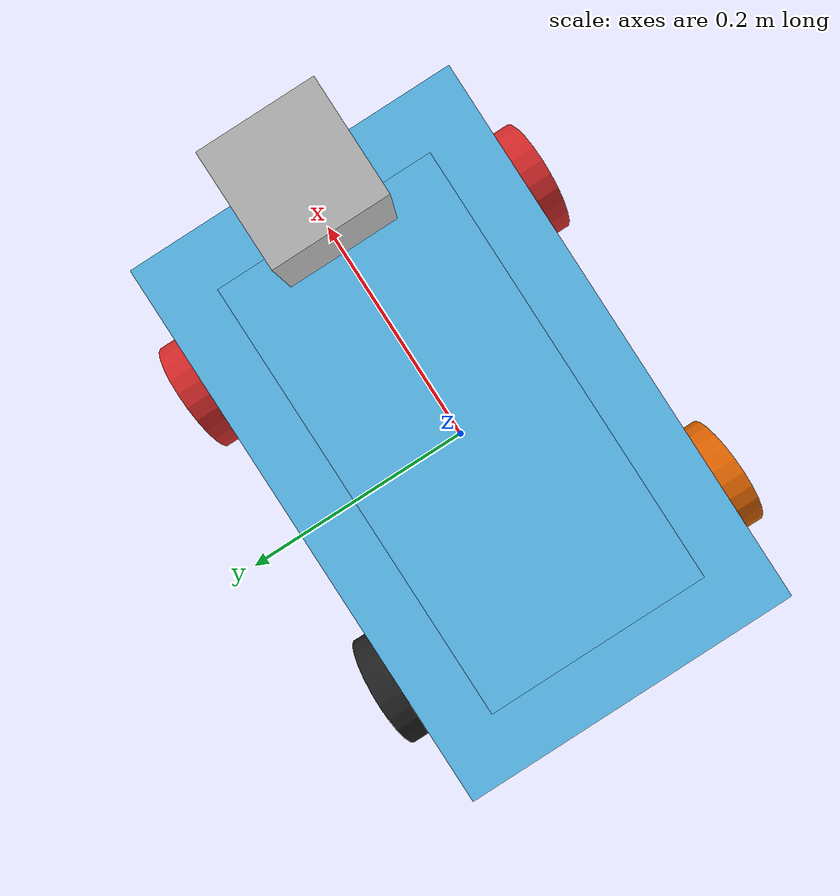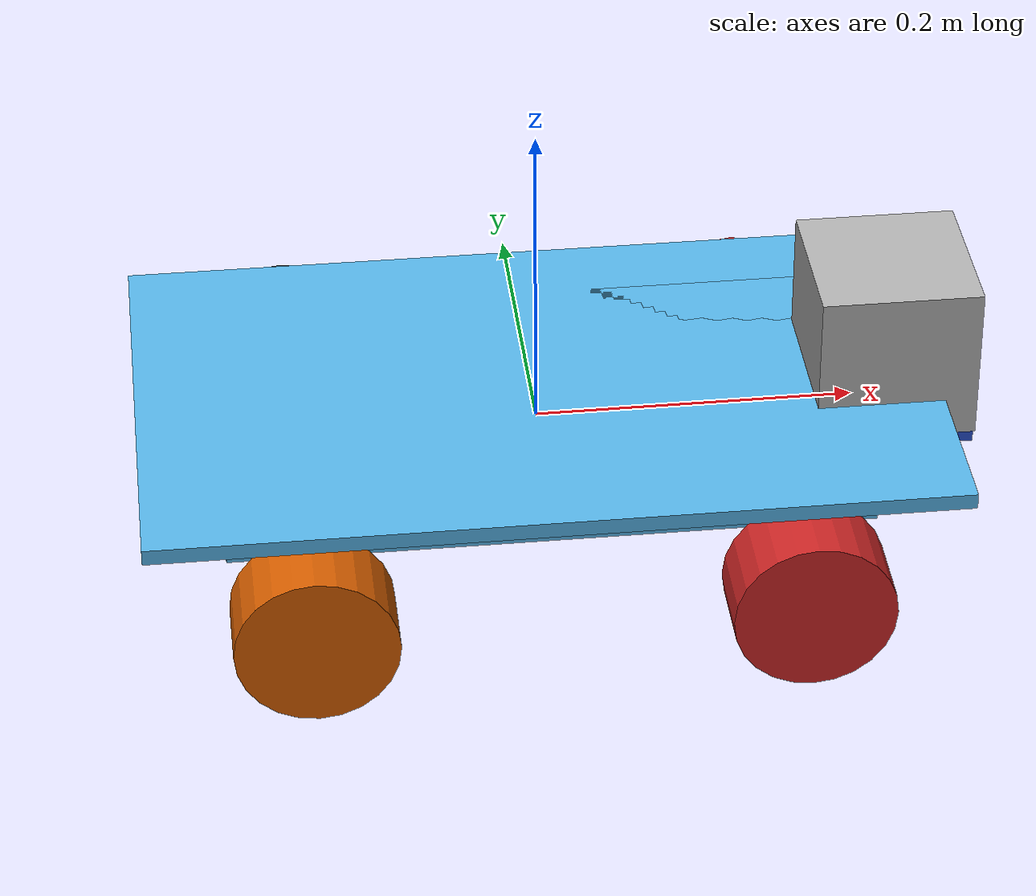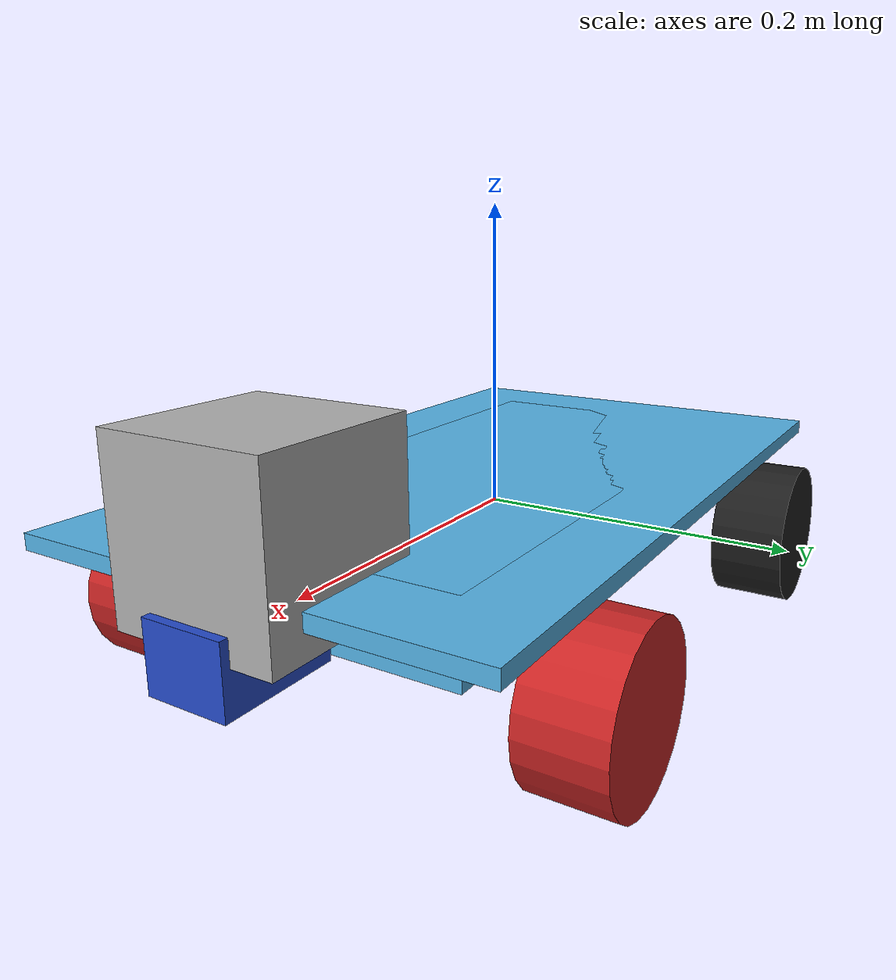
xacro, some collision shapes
<?xml version='1.0'?>

<robot name="my_bot" xmlns:xacro="http://www.ros.org/wiki/xacro">
<xacro:include filename="$(find custom_bot)/urdf/my_bot.gazebo" />
  <link name="robot_footprint"></link>

  <joint name="robot_footprint_joint" type="fixed">
    <origin xyz="0 0 0" rpy="0 0 0" />
    <parent link="robot_footprint"/>
    <child link="chassis" />
  </joint>

  <link name='chassis'>
    <pose>0 0 0.1 0 0 0</pose>

    <inertial>
      <mass value="15.0"/>
      <origin xyz="0.0 0 0" rpy=" 0 0 0"/>
      <inertia
          ixx="0.1" ixy="0" ixz="0"
          iyy="0.1" iyz="0"
          izz="0.1"
      />
    </inertial>

    <collision name='collision'>
      <origin xyz="0 0 0" rpy=" 0 0 0"/>
      <geometry>
        <box size=".4 .2 .05"/>
      </geometry>
    </collision>

    <visual name='chassis_visual'>
      <origin xyz="0 0 0" rpy=" 0 0 0"/>
      <geometry>
        <box size=".4 .2 .05"/>
      </geometry>
    </visual>

    <collision name='FloorBed_collision'>
      <origin xyz="0 0 0.02" rpy=" 0 0 0"/>
      <geometry>
        <box size=".5 .3 .01"/>
      </geometry>
    </collision>

    <visual name='FloorBed_visual'>
      <origin xyz="0 0 0.02" rpy=" 0 0 0"/>
      <geometry>
        <box size=".5 .3 .01"/>
      </geometry>
    </visual>

  </link>

  <link name='Left_front_wheel'>

    <inertial>
      <mass value="5.0"/>
      <origin xyz="0 0 0" rpy="0 0 0"/>
      <inertia
          ixx="0.1" ixy="0" ixz="0"
          iyy="0.1" iyz="0"
          izz="0.1"
      />
    </inertial>

    <collision name='collision'>
      <origin xyz="0 0 0" rpy="0 1.5707 1.5707"/>
      <geometry>
        <cylinder length="0.05" radius="0.05"/>
      </geometry>
    </collision>

    <visual name='left_front_wheel_visual'>
      <origin xyz="0 0 0" rpy="0 1.5707 1.5707"/>
      <geometry>
        <cylinder length="0.05" radius="0.05"/>
      </geometry>
    </visual>

  </link>

  <joint type="continuous" name="left_front_wheel_hinge">
    <origin xyz="0.15 0.15 -0.04" rpy="0 0 0"/>
    <child link="Left_front_wheel"/>
    <parent link="chassis"/>
    <axis xyz="0 1 0" rpy="0 0 0"/>
    <limit effort="10000" velocity="1000"/>
    <joint_properties damping="1.0" friction="0.02"/>
  </joint>

  <link name='Left_back_wheel'>

    <inertial>
      <mass value="5.0"/>
      <origin xyz="0 0 0" rpy="0 0 0"/>
      <inertia
          ixx="0.1" ixy="0" ixz="0"
          iyy="0.1" iyz="0"
          izz="0.1"
      />
    </inertial>

    <collision name='collision'>
      <origin xyz="0 0 0" rpy="0 1.5707 1.5707"/>
      <geometry>
        <cylinder length="0.05" radius="0.05"/>
      </geometry>
    </collision>

    <visual name='left_back_wheel_visual'>
      <origin xyz="0 0 0" rpy="0 1.5707 1.5707"/>
      <geometry>
        <cylinder length="0.05" radius="0.05"/>
      </geometry>
    </visual>

  </link>

  <joint type="continuous" name="left_back_wheel_hinge">
    <origin xyz="-0.15 0.15 -0.04" rpy="0 0 0"/>
    <child link="Left_back_wheel"/>
    <parent link="chassis"/>
    <axis xyz="0 1 0" rpy="0 0 0"/>
    <limit effort="10000" velocity="1000"/>
    <joint_properties damping="1.0" friction="0.02"/>
  </joint>

  <link name='Right_front_wheel'>

    <inertial>
      <mass value="5.0"/>
      <origin xyz="0 0 0" rpy="0 0 0"/>
      <inertia
          ixx="0.1" ixy="0" ixz="0"
          iyy="0.1" iyz="0"
          izz="0.1"
      />
    </inertial>

    <collision name='collision'>
      <origin xyz="0 0 0" rpy=" 0 1.5707 1.5707"/>
      <geometry>
        <cylinder length="0.05" radius="0.05"/>
      </geometry>
    </collision>

    <visual name='right_front_wheel_visual'>
      <origin xyz="0 0 0" rpy=" 0 1.5707 1.5707"/>
      <geometry>
        <cylinder length="0.05" radius="0.05"/>
      </geometry>
    </visual>

  </link>

  <joint type="continuous" name="right_front_wheel_hinge">
    <origin xyz="0.15 -0.15 -0.04" rpy="0 0 0"/>
    <child link="Right_front_wheel"/>
    <parent link="chassis"/>
    <axis xyz="0 1 0" rpy="0 0 0"/>
    <limit effort="10000" velocity="1000"/>
    <joint_properties damping="1.0" friction="0.02"/>
  </joint>

  <link name='Right_back_wheel'>

    <inertial>
      <mass value="5.0"/>
      <origin xyz="0 0 0" rpy="0 0 0"/>
      <inertia
          ixx="0.1" ixy="0" ixz="0"
          iyy="0.1" iyz="0"
          izz="0.1"
      />
    </inertial>

    <collision name='collision'>
      <origin xyz="0 0 0" rpy=" 0 1.5707 1.5707"/>
      <geometry>
        <cylinder length="0.05" radius="0.05"/>
      </geometry>
    </collision>

    <visual name='right_back_wheel_visual'>
      <origin xyz="0 0 0" rpy=" 0 1.5707 1.5707"/>
      <geometry>
        <cylinder length="0.05" radius="0.05"/>
      </geometry>
    </visual>

  </link>

  <joint type="continuous" name="right_back_wheel_hinge">
    <origin xyz="-0.15 -0.15 -0.04" rpy="0 0 0"/>
    <child link="Right_back_wheel"/>
    <parent link="chassis"/>
    <axis xyz="0 1 0" rpy="0 0 0"/>
    <limit effort="10000" velocity="1000"/>
    <joint_properties damping="1.0" friction="0.02"/>
  </joint>

  <link name='camera'>

    <inertial>
      <mass value="0.0"/>
      <origin xyz="0.0 0 0" rpy="0 0 0"/>
      <inertia
          ixx="1e-6" ixy="0" ixz="0"
          iyy="1e-6" iyz="0"
          izz="1e-6"
      />
    </inertial>

    <collision name='collision'>
      <origin xyz="0 0 0" rpy=" 0 0 0"/>
      <geometry>
        <box size=".05 .05 .04"/>
      </geometry>
    </collision>

    <visual name='camera_visual'>
      <origin xyz="0 0 0" rpy=" 0 0 0"/>
      <geometry>
        <box size=".07 .05 .04"/>
      </geometry>
    </visual>

  </link>

  <joint type="fixed" name="camera_joint">
    <origin xyz="0.24 0 -0.005" rpy="0 0 0"/>
    <child link="camera"/>
    <parent link="chassis"/>
  </joint>

  <link name='hokuyo'>

    <inertial>
      <mass value="0.0"/>
      <origin xyz="0.0 0 0" rpy="0 0 0"/>
      <inertia
          ixx="1e-6" ixy="0" ixz="0"
          iyy="1e-6" iyz="0"
          izz="1e-6"
      />
    </inertial>

    <collision name='collision'>
      <origin xyz="0 0 0" rpy=" 0 0 0"/>
      <geometry>
        <box size="0.1 0.1 0.1"/>
      </geometry>
    </collision>

    <visual name='laser_visual'>
      <origin xyz="0 0 0" rpy=" 0 0 0"/>
      <geometry>
        <mesh filename="package://udacity_bot/meshes/hokuyo.dae"/>
      </geometry>
    </visual>

  </link>

  <joint type="fixed" name="hokuyo_joint">
    <origin xyz="0.22 0 0.05" rpy="0 0 0"/>
    <child link="hokuyo"/>
    <parent link="chassis"/>
  </joint>

  <gazebo reference="Left_back_wheel">
    <material>Gazebo/Black</material>
  </gazebo>

  <gazebo reference="Right_back_wheel">
    <material>Gazebo/RustySteel</material>
  </gazebo>

  <gazebo reference="Left_front_wheel">
      <material>Gazebo/red</material>
  </gazebo>

  <gazebo reference="Right_front_wheel">
      <material>Gazebo/Red</material>
  </gazebo>

</robot>
